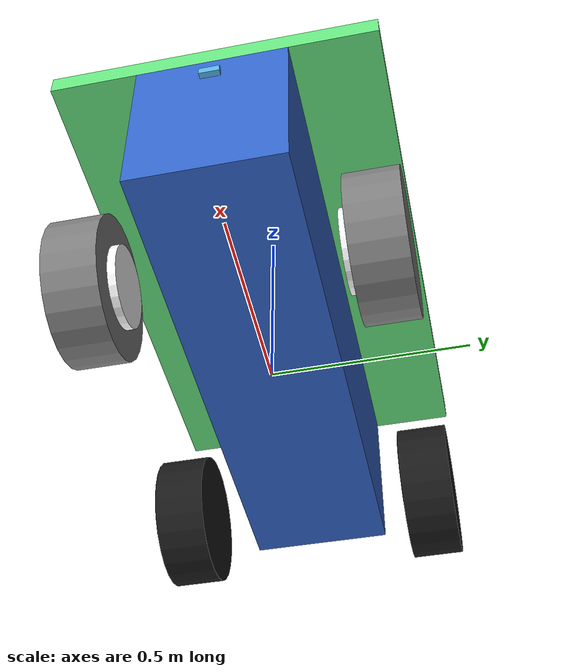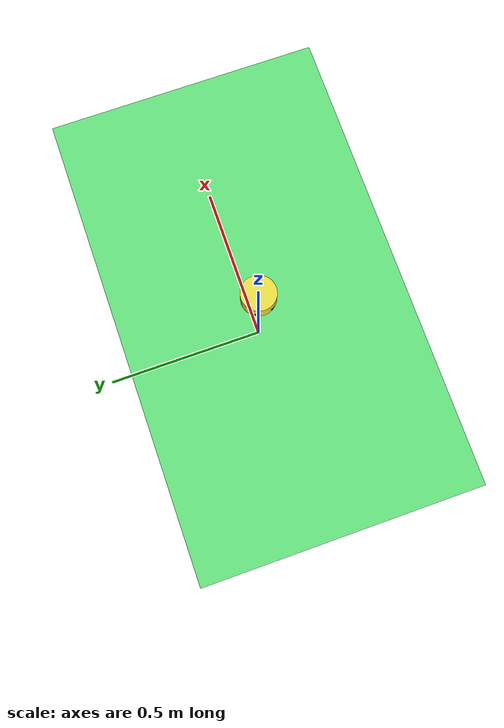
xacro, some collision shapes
<?xml version="1.0"?>
<robot name="autobot" xmlns:xacro="http://ros.org/wiki/xacro">

  <xacro:include filename="bot_ros2_control.xacro"/>

  <!-- Base Footprint (reference frame) -->
  <link name="base_footprint"/>

  <!-- Main Base Link -->
  <link name="base_link">
    <inertial>
      <origin xyz="0 0 0" rpy="0 0 0"/>
      <mass value="5"/>
      <inertia ixx="0.144" ixy="0" ixz="0" iyy="0.857" iyz="0" izz="0.840"/>
    </inertial>

    <collision name="base_collision">
      <origin xyz="0 0 0" rpy="0 0 0"/>
      <geometry>
        <box size="1.37 0.37 0.415"/>
      </geometry>
      <surface>
        <contact>
          <collide_without_contact>false</collide_without_contact>
          <ode>
            <min_depth>0.005</min_depth>
            <kp>1e6</kp>
            <kd>100.0</kd>
            <max_vel>0.01</max_vel>
          </ode>
        </contact>
        <friction>
          <ode>
            <mu>0.5</mu>
            <mu2>0.4</mu2>
          </ode>
        </friction>
      </surface>
    </collision>

    <visual name="base_visual">
      <origin xyz="0 0 0" rpy="0 0 0"/>
      <geometry>
        <box  size="1.37 0.37 0.415"/>
      </geometry>
      <material name="blue">
        <color rgba="0.2 0.4 0.8 1"/>
      </material>
    </visual>

  </link>

  <!-- Fixed joint between base_footprint and base_link -->
  <joint name="base_footprint_joint" type="fixed">
    <parent link="base_footprint"/>
    <child link="base_link"/>
    <origin xyz="0 0 0.175" rpy="0 0 0"/>
  </joint>

 <link name="base_front_left_steering">
    <inertial>
      <origin xyz="0 0 0" rpy="0 0 0"/>
      <mass value="0.25"/>
      <inertia ixx="0.000633" ixy="0" ixz="0" iyy="0.000633" iyz="0" izz="0.00125"/>
    </inertial>

    <visual name="base_front_left_steering_visual">
      <origin xyz="0 0 0" rpy="0 0 0"/>
      <geometry>
        <cylinder radius="0.1" length="0.02"/>
      </geometry>
      <material name="white">
        <color rgba="1 1 1 1"/>
      </material>
    </visual>

    <collision name="base_front_left_steering_collision">
      <origin xyz="0 0 0" rpy="0 0 0"/>
      <geometry>
        <cylinder radius="0.1" length="0.02"/>
      </geometry>
    </collision>
  </link>

  <joint name="base_front_left_steering_joint" type="revolute">
    <parent link="base_link"/>
    <child link="base_front_left_steering"/>
    <origin xyz="0.39 -0.265 -0.2075" rpy="-1.57079632679 0 0"/>
    <limit lower="-0.2616" upper="0.2616" effort="100" velocity="1.0"/>
    <axis xyz="0 1 0"/>
  </joint>

  <link name="base_front_right_steering">
    <inertial>
      <origin xyz="0 0 0" rpy="0 0 0"/>
      <mass value="0.25"/>
      <inertia ixx="0.000633" ixy="0" ixz="0" iyy="0.000633" iyz="0" izz="0.00125"/>
    </inertial>

    <visual name="base_front_right_steering_visual">
      <origin xyz="0 0 0" rpy="0 0 0"/>
      <geometry>
        <cylinder radius="0.1" length="0.02"/>
      </geometry>
      <material name="white">
        <color rgba="1 1 1 1"/>
      </material>
    </visual>

    <collision name="base_front_right_steering_collision">
      <origin xyz="0 0 0" rpy="0 0 0"/>
      <geometry>
        <cylinder radius="0.1" length="0.02"/>
      </geometry>
    </collision>
  </link>

  <joint name="base_front_right_steering_joint" type="revolute">
    <parent link="base_link"/>
    <child link="base_front_right_steering"/>
    <origin xyz="0.39 0.265 -0.2075" rpy="-1.57079632679 0 0"/>
    <limit lower="-0.2616" upper="0.2616" effort="100" velocity="1.0"/>
    <axis xyz="0 1 0"/>
  </joint>

  <!-- ========== FRONT LEFTWHEEL ========== -->

  <link name="base_front_left_wheel">
    <inertial>
      <origin xyz="0 0 0" rpy="0 0 0"/>
      <mass value="2"/>
      <inertia ixx="0.0181" ixy="0" ixz="0" iyy="0.0306" iyz="0" izz="0.0306"/>
    </inertial>

    <visual name="base_front_left_wheel_visual">
      <origin xyz="0 0 0" rpy="0 0 0"/>
      <geometry>
        <cylinder radius="0.175" length="0.13"/>
      </geometry>
      <material name="grey">
        <color rgba="0.5 0.5 0.5 1"/>
      </material>
    </visual>

    <collision name="base_front_left_wheel_collision">
      <origin xyz="0 0 0" rpy="0 0 0"/>
      <geometry>
        <cylinder radius="0.175" length="0.13"/>
      </geometry>
      <surface>
        <contact>
          <collide_without_contact>false</collide_without_contact>
          <ode>
            <min_depth>0.005</min_depth>
            <kp>1e6</kp>
            <kd>100.0</kd>
          </ode>
        </contact>
        <friction>
          <ode>
            <mu>0.8</mu>
            <mu2>0.5</mu2>
            <fdir1>1 0 0</fdir1>
          </ode>
        </friction>
      </surface>
    </collision>
  </link>

  <joint name="base_front_left_wheel_joint" type="continuous">
    <parent link="base_front_left_steering"/>
    <child link="base_front_left_wheel"/>
    <origin xyz="0 0 -0.075" rpy="0 0 0"/>
    <axis xyz="0 0 1"/>
  </joint>

    <!-- ========== FRONT RIGHTWHEEL ========== -->

  <link name="base_front_right_wheel">
    <inertial>
      <origin xyz="0 0 0" rpy=" 0 0 0"/>
      <mass value="2"/>
      <inertia ixx="0.0181" ixy="0" ixz="0" iyy="0.0306" iyz="0" izz="0.0306"/>
    </inertial>

    <visual name="base_front_right_wheel_visual">
      <origin xyz="0 0 0" rpy="0 0 0"/>
      <geometry>
        <cylinder radius="0.175" length="0.13"/>
      </geometry>
      <material name="grey">
        <color rgba="0.5 0.5 0.5 1"/>
      </material>
    </visual>

    <collision name="base_front_right_wheel_collision">
      <origin xyz="0 0 0" rpy="0 0 0"/>
      <geometry>
        <cylinder radius="0.175" length="0.13"/>
      </geometry>
      <surface>
        <contact>
          <collide_without_contact>false</collide_without_contact>
          <ode>
            <min_depth>0.005</min_depth>
            <kp>1e6</kp>
            <kd>100.0</kd>
          </ode>
        </contact>
        <friction>
          <ode>
            <mu>0.8</mu>
            <mu2>0.5</mu2>
            <fdir1>1 0 0</fdir1>
          </ode>
        </friction>
      </surface>
    </collision>
  </link>

  <joint name="base_front_right_wheel_joint" type="continuous">
    <parent link="base_front_right_steering"/>
    <child link="base_front_right_wheel"/>
    <origin xyz="0 0 0.075" rpy="0 0 0"/>
    <axis xyz="0 0 1"/>
  </joint>

  <!-- ========== BACK LEFTWHEEL ========== -->

  <link name="base_back_left_wheel">
    <inertial>
      <origin xyz="0 0 0" rpy="0 0 0"/>
      <mass value="2"/>
      <inertia ixx="0.0181" ixy="0" ixz="0" iyy="0.0306" iyz="0" izz="0.0306"/>
    </inertial>

    <visual name="base_back_left_wheel_visual">
      <origin xyz="0 0 0" rpy="0 0 0"/>
      <geometry>
        <cylinder radius="0.175" length="0.13"/>
      </geometry>
      <material name="black">
        <color rgba="0.1 0.1 0.1 1"/>
      </material>
    </visual>

    <collision name="base_back_left_wheel_collision">
      <origin xyz="0 0 0" rpy="0 0 0"/>
      <geometry>
        <cylinder radius="0.175" length="0.13"/>
      </geometry>
      <surface>
        <contact>
          <collide_without_contact>false</collide_without_contact>
          <ode>
            <min_depth>0.005</min_depth>
            <kp>1e6</kp>
            <kd>100.0</kd>
          </ode>
        </contact>
        <friction>
          <ode>
            <mu>0.8</mu>
            <mu2>0.5</mu2>
            <fdir1>1 0 0</fdir1>
          </ode>
        </friction>
      </surface>
    </collision>
  </link>

  <joint name="base_back_left_wheel_joint" type="continuous">
    <parent link="base_link"/>
    <child link="base_back_left_wheel"/>
    <origin xyz="-0.51 -0.335 -0.2075" rpy="-1.57079632679 0 0"/>
    <axis xyz="0 0 1"/>
  </joint>

    <!-- ========== BACK RIGHTWHEEL ========== -->

  <link name="base_back_right_wheel">
    <inertial>
      <origin xyz="0 0 0" rpy="0 0 0"/>
      <mass value="2"/>
      <inertia ixx="0.0181" ixy="0" ixz="0" iyy="0.0306" iyz="0" izz="0.0306"/>
    </inertial>

    <visual name="base_back_right_wheel_visual">
      <origin xyz="0 0 0" rpy="0 0 0"/>
      <geometry>
        <cylinder radius="0.175" length="0.13"/>
      </geometry>
      <material name="black">
        <color rgba="0.1 0.1 0.1 1"/>
      </material>
    </visual>

    <collision name="base_back_right_wheel_collision">
      <origin xyz="0 0 0" rpy="0 0 0"/>
      <geometry>
        <cylinder radius="0.175" length="0.13"/>
      </geometry>
      <surface>
        <contact>
          <collide_without_contact>false</collide_without_contact>
          <ode>
            <min_depth>0.005</min_depth>
            <kp>1e6</kp>
            <kd>100.0</kd>
          </ode>
        </contact>
        <friction>
          <ode>
            <mu>0.8</mu>
            <mu2>0.5</mu2>
            <fdir1>1 0 0</fdir1>
          </ode>
        </friction>
      </surface>
    </collision>
  </link>

  <joint name="base_back_right_wheel_joint" type="continuous">
    <parent link="base_link"/>
    <child link="base_back_right_wheel"/>
    <origin xyz="-0.51 0.335 -0.2075" rpy="-1.57079632679 0 0"/>
    <axis xyz="0 0 1"/>
  </joint>

  <link name="bot_storage_base">
    <inertial>
      <origin xyz="0 0 0" rpy="0 0 0"/>
      <mass value="2"/>
      <inertia ixx="0.3132" ixy="0" ixz="0" iyy="0.1071" iyz="0" izz="0.4195"/>
    </inertial>

    <collision name="bot_storage_base_collision">
      <origin xyz="0 0 0" rpy="0 0 0"/>
      <geometry>
        <box size="0.8 1.37 0.05"/>
      </geometry>
    </collision>

    <visual name="bot_storage_base_visual">
      <origin xyz="0 0 0" rpy="0 0 0"/>
      <geometry>
        <box  size="0.8 1.37 0.05"/>
      </geometry>
      <material name="rgb">
        <color rgba="0.4 0.9 0.5 1"/>
      </material>
    </visual>
  </link>

  <joint name="bot_storage_base_joint" type="fixed">
    <parent link="base_link"/>
    <child link="bot_storage_base"/>
    <origin xyz="0 0 0.2325" rpy="0 0 1.57079632679"/>
  </joint>
   <link name="rgb_camera">
    <inertial>
    <origin xyz="-0.03 0 0" rpy="0 0 0"/>
        <mass value="0.1" />
        <inertia ixx="0.000023" ixy="0.0" ixz="0"
            iyy="0.000011" iyz="0" izz="0.000030" />
    </inertial>
    <visual>
      <origin xyz="0 0 0" rpy="0 0 1.57079632679" />
      <geometry>
         <mesh filename="file://$(find bot_description)/meshes/3dCamera.DAE" scale="1 1 1"/>
      </geometry>
    </visual>

    <collision>
      <origin xyz="0 0 0" rpy="0 0 0"/>
      <geometry>
          <box size="0.03 0.05 0.02" />
      </geometry>
    </collision>
  </link>

  <joint name="camera_joint" type="fixed">
    <origin xyz="0.685 0 0.15" rpy="0 0 0"/>
    <parent link="base_link"/>
    <child link="rgb_camera"/>
    <axis xyz="0.0 0 0"/>
  </joint>

  <joint type="fixed" name="camera_optical_joint">
    <origin xyz="0 0 0.151" rpy="0 0 0"/>
    <parent link="rgb_camera"/>
    <child link="camera_link_optical"/>
  </joint>

   <link name="camera_link_optical">
  </link>

    <gazebo reference="camera_link_optical">
    <sensor name="camera" type="camera">
      <camera>
        <horizontal_fov>1.3962634</horizontal_fov>
        <image>
          <width>640</width>
          <height>480</height>
          <format>R8G8B8</format>
        </image>
        <clip>
          <near>0.1</near>
          <far>15</far>
        </clip>
        <noise>
          <type>gaussian</type>
          <mean>0.0</mean>
          <stddev>0.007</stddev>
        </noise>
        <optical_frame_id>camera_link_optical</optical_frame_id>
        <camera_info_topic>camera/camera_info</camera_info_topic>
      </camera>
      <always_on>1</always_on>
      <update_rate>20</update_rate>
      <visualize>true</visualize>
      <topic>camera/image_raw</topic>
    </sensor>
    </gazebo>

  <link name="laser_link">

    <visual>
      <geometry>
        <mesh filename="file://$(find bot_description)/meshes/lidar_3d_v1.dae" scale="1 1 1"/>
      </geometry>
    </visual>

    <collision>

      <geometry>
        <cylinder radius="0.0516" length="0.0717" />
      </geometry>
    </collision>
  </link>

  <link name="lidar_base">

    <visual>
    <origin xyz="0 0 0.011" rpy="0 0 0"/>
        <material name="black">
        <color rgba="0.15 0.15 0.15 1"/>
      </material>
      <geometry>
        <cylinder radius="0.0516" length="0.032" />
      </geometry>
    </visual>

    <collision>
      <origin xyz="0 0 0.011" rpy="0 0 0"/>
      <geometry>
        <cylinder radius="0.0516" length="0.032" />
      </geometry>
    </collision>
  </link>

    <joint name="lidar_base_joint" type="fixed">
    <origin xyz="0 0 0.25" rpy="0 0.0 0.0"/>
    <parent link="base_link"/>
    <child link="lidar_base"/>
    <axis xyz="0.0 0.0 1.0"/>
  </joint>

  <joint name="laser_joint" type="fixed">
    <origin xyz="0 0 0.027" rpy="0 0.0 0.0"/>
    <parent link="lidar_base"/>
    <child link="laser_link"/>
    <axis xyz="0.0 0.0 1.0"/>
  </joint>

  <gazebo reference="laser_link">
    <sensor name="lidar" type="gpu_lidar">
      <always_on>true</always_on>
      <visualize>true</visualize>
      <topic>scan</topic>
      <update_rate>10</update_rate>
      <gz_frame_id>laser_link</gz_frame_id>
      <lidar>
        <scan>
          <horizontal>
            <samples>1024</samples>
            <resolution>1.00000</resolution>
            <min_angle>0.000000</min_angle>
            <max_angle>6.280000</max_angle>
          </horizontal>
          <vertical>
            <samples>16</samples>
            <resolution>1.0</resolution>
            <min_angle>-0.2618</min_angle>
            <max_angle>0.2618</max_angle>
          </vertical>
        </scan>
        <range>
          <min>0.120000</min>
          <max>50.0</max>
          <resolution>0.02</resolution>
        </range>
        <noise>
          <type>gaussian</type>
          <mean>0.0</mean>
          <stddev>0.01</stddev>
        </noise>
      </lidar>
    </sensor>
  </gazebo>

  <joint name="navsat_joint" type="fixed">
    <origin xyz="0 0 0" rpy="0 0 0" />
    <parent link="base_link"/>
    <child link="navsat_link" />
  </joint>

  <link name="navsat_link">
  </link>

  <joint name="imu_joint" type="fixed">
    <origin xyz="0 0 0" rpy="0 0 0" />
    <parent link="base_link"/>
    <child link="imu_link" />
  </joint>

  <link name="imu_link">
  </link>

  <gazebo reference="imu_link">
    <sensor name="imu" type="imu">
      <always_on>true</always_on>
      <update_rate>100</update_rate>  <!-- Higher rate for better fusion -->
      <visualize>true</visualize>
      <topic>/imu</topic>         <!-- Standard IMU topic -->
      <enable_metrics>true</enable_metrics>
      <gz_frame_id>imu_link</gz_frame_id>

      <!-- Enhanced IMU parameters for accurate sensing -->
      <imu>
        <angular_velocity>
          <x>
            <noise type="gaussian">
              <mean>0.0</mean>
              <stddev>2e-4</stddev>
            </noise>
          </x>
          <y>
            <noise type="gaussian">
              <mean>0.0</mean>
              <stddev>2e-4</stddev>
            </noise>
          </y>
          <z>
            <noise type="gaussian">
              <mean>0.0</mean>
              <stddev>2e-4</stddev>
            </noise>
          </z>
        </angular_velocity>
        <linear_acceleration>
          <x>
            <noise type="gaussian">
              <mean>0.0</mean>
              <stddev>1.7e-2</stddev>
            </noise>
          </x>
          <y>
            <noise type="gaussian">
              <mean>0.0</mean>
              <stddev>1.7e-2</stddev>
            </noise>
          </y>
          <z>
            <noise type="gaussian">
              <mean>0.0</mean>
              <stddev>1.7e-2</stddev>
            </noise>
          </z>
        </linear_acceleration>
      </imu>
    </sensor>
  </gazebo>

  <gazebo reference="navsat_link">
    <sensor name="navsat" type="navsat">
      <always_on>1</always_on>
      <update_rate>1</update_rate>
      <topic>navsat</topic>
      <gz_frame_id>navsat_link</gz_frame_id>
    </sensor>
  </gazebo>

  <!-- Front wheels, sandy terrain physics -->
  <gazebo reference="base_front_left_wheel">
    <mu1>0.8</mu1>
    <mu2>0.5</mu2>
    <kp>1e6</kp>
    <kd>100.0</kd>
    <slip1>0.012</slip1>
    <slip2>0.018</slip2>
    <minDepth>0.005</minDepth>
    <maxVel>0.01</maxVel>
    <fdir1>1 0 0</fdir1>
    <material>Gazebo/Grey</material>
  </gazebo>

  <gazebo reference="base_front_right_wheel">
    <mu1>0.8</mu1>
    <mu2>0.5</mu2>
    <kp>1e6</kp>
    <kd>100.0</kd>
    <slip1>0.012</slip1>
    <slip2>0.018</slip2>
    <minDepth>0.005</minDepth>
    <maxVel>0.01</maxVel>
    <fdir1>1 0 0</fdir1>
    <material>Gazebo/Grey</material>
  </gazebo>

  <!-- Rear drive wheels, sandy terrain -->
  <gazebo reference="base_back_left_wheel">
    <mu1>0.8</mu1>
    <mu2>0.5</mu2>
    <kp>1e6</kp>
    <kd>100.0</kd>
    <slip1>0.015</slip1>
    <slip2>0.012</slip2>
    <minDepth>0.005</minDepth>
    <maxVel>0.01</maxVel>
    <fdir1>1 0 0</fdir1>
    <material>Gazebo/Black</material>
  </gazebo>

  <gazebo reference="base_back_right_wheel">
    <mu1>0.8</mu1>
    <mu2>0.5</mu2>
    <kp>1e6</kp>
    <kd>100.0</kd>
    <slip1>0.015</slip1>
    <slip2>0.012</slip2>
    <minDepth>0.005</minDepth>
    <maxVel>0.01</maxVel>
    <fdir1>1 0 0</fdir1>
    <material>Gazebo/Black</material>
  </gazebo>

  <!-- Chassis soft contact -->
  <gazebo reference="base_link">
    <kp>1e6</kp>
    <kd>100.0</kd>
    <mu1>0.5</mu1>
    <mu2>0.4</mu2>
    <minDepth>0.005</minDepth>
    <maxVel>0.01</maxVel>
  </gazebo>

  <gazebo>
    <plugin filename="gz_ros2_control-system" name="gz_ros2_control::GazeboSimROS2ControlPlugin">
      <parameters>$(find bot_controller)/config/bot_controller.yaml</parameters>
      <hold_joints_at_controller_startup>false</hold_joints_at_controller_startup>
    </plugin>
    <!-- Sensors, Imu, NavSat system plugins are in the world SDF — do NOT duplicate here -->

    <!-- ═══ WHEEL SLIP — per-wheel baseline slip compliance ═══ -->
    <plugin filename="gz-sim-wheel-slip-system" name="gz::sim::systems::WheelSlip">
      <wheel link_name="base_front_left_wheel">
        <slip_compliance_lateral>0.18</slip_compliance_lateral>
        <slip_compliance_longitudinal>0.25</slip_compliance_longitudinal>
        <wheel_normal_force>45</wheel_normal_force>
        <wheel_radius>0.175</wheel_radius>
      </wheel>
      <wheel link_name="base_front_right_wheel">
        <slip_compliance_lateral>0.18</slip_compliance_lateral>
        <slip_compliance_longitudinal>0.25</slip_compliance_longitudinal>
        <wheel_normal_force>45</wheel_normal_force>
        <wheel_radius>0.175</wheel_radius>
      </wheel>
      <wheel link_name="base_back_left_wheel">
        <slip_compliance_lateral>0.22</slip_compliance_lateral>
        <slip_compliance_longitudinal>0.30</slip_compliance_longitudinal>
        <wheel_normal_force>55</wheel_normal_force>
        <wheel_radius>0.175</wheel_radius>
      </wheel>
      <wheel link_name="base_back_right_wheel">
        <slip_compliance_lateral>0.22</slip_compliance_lateral>
        <slip_compliance_longitudinal>0.30</slip_compliance_longitudinal>
        <wheel_normal_force>55</wheel_normal_force>
        <wheel_radius>0.175</wheel_radius>
      </wheel>
    </plugin>

    <!-- LookupWheelSlip not available in Gazebo Sim 8 (Harmonic), needs gz-sim 10+.
         The slip_map.png is ready at models/terrain/materials/textures/slip_map.png -->

  </gazebo>

</robot>
